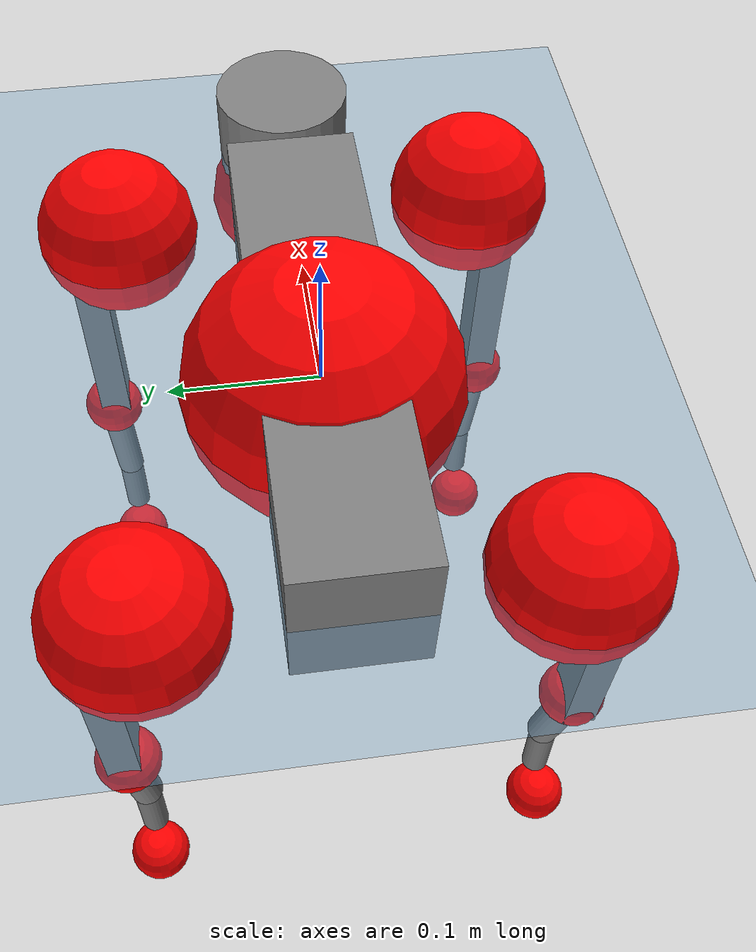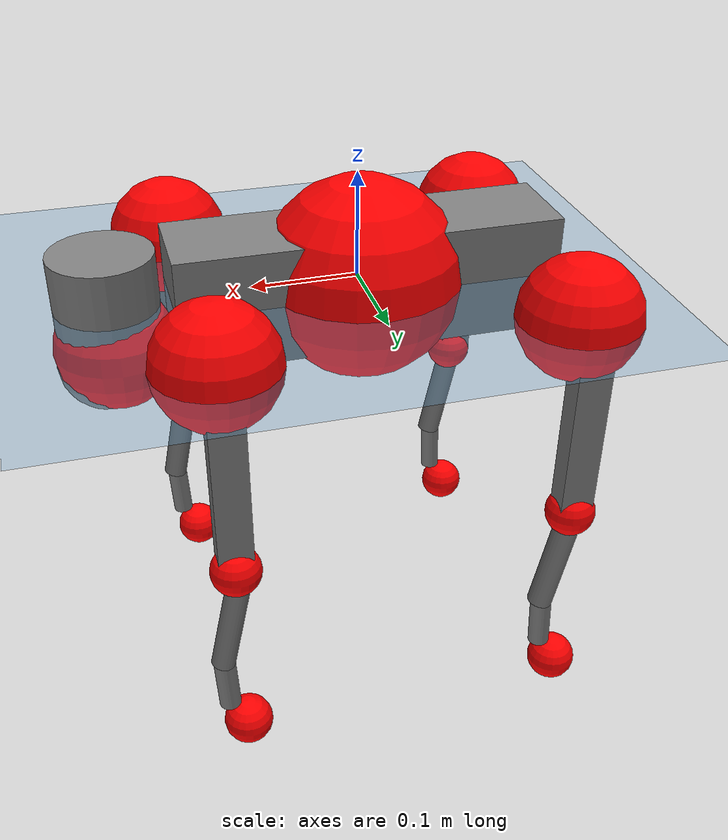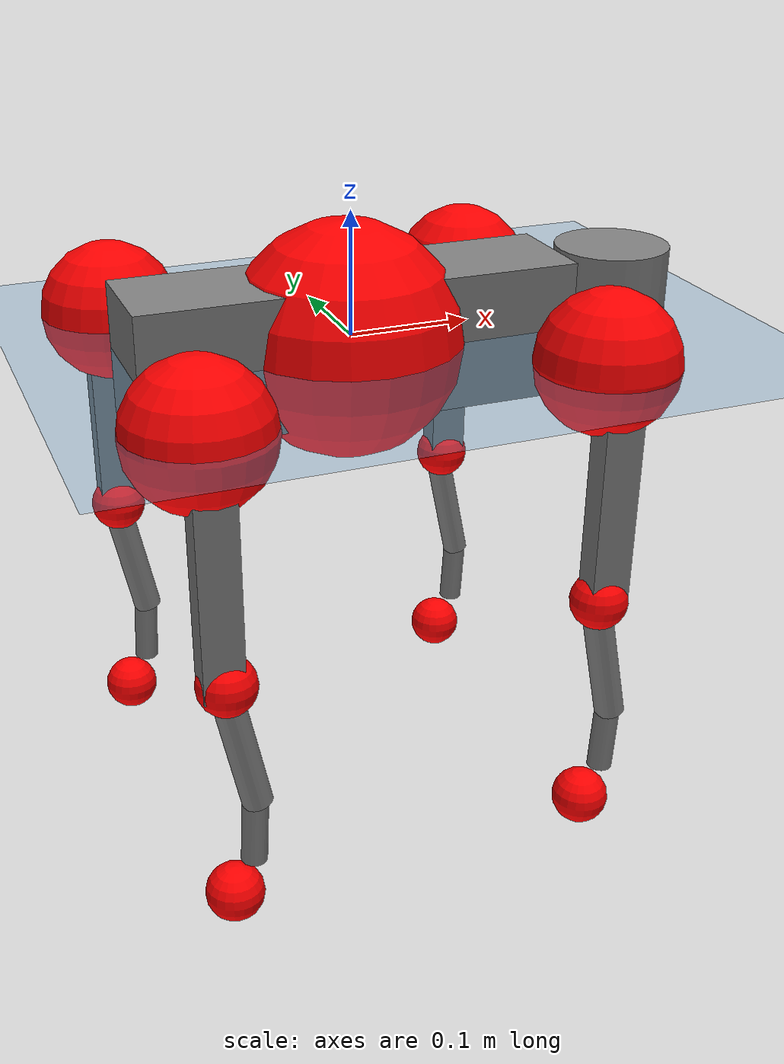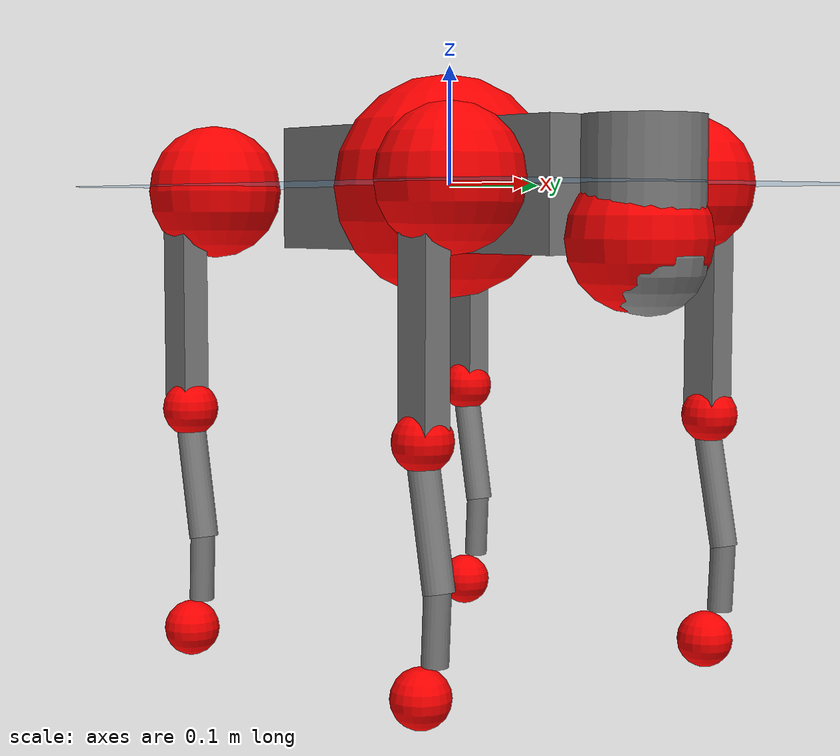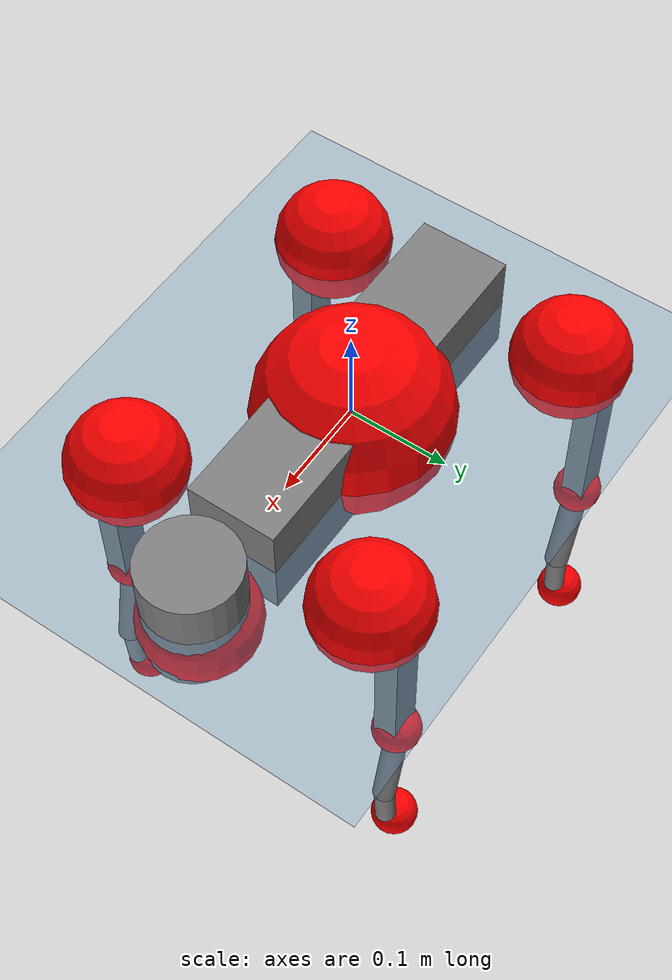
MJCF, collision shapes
<mujoco model="go2">
  <compiler angle="radian" assetdir="assets" balanceinertia="true" inertiafromgeom="false"/>

  <option timestep="0.005" density="1.2" viscosity="2e-05"/>

  <size nkey="1"/>

  <visual>
    <quality shadowsize="8192"/>
    <map shadowclip="0.5"/>
  </visual>

  <default>
    <default class="/">
      <geom contype="0" conaffinity="0" group="1" solref="-1000 -80"/>
      <site size="0.01 0.005 0.005" group="5"/>
      <general forcelimited="true" biastype="affine" gainprm="20" biasprm="0 -20 -0.5"/>
      <default class="go2">
        <joint armature="0.01" damping="0.01" frictionloss="0.2"/>
        <geom condim="1" margin="0.001"/>
        <default class="visual">
          <geom type="mesh" group="2"/>
        </default>
        <default class="collision">
          <geom group="3"/>
          <default class="foot">
            <geom size="0.022 0 0" condim="6" priority="1" friction="0.8 0.02 0.01" solimp="0.015 1 0.022"/>
          </default>
        </default>
        <default class="reward_collision_sphere">
          <geom group="5" rgba="1 0 0 1"/>
        </default>
      </default>
    </default>
  </default>

  <asset>
    <texture type="skybox" colorspace="auto" name="//unnamed_texture_0" builtin="gradient" rgb1="0.95 0.95 0.95" rgb2="0.95 0.95 0.95" width="100" height="600"/>
    <texture type="2d" colorspace="auto" name="texplane" builtin="checker" rgb1="0.345 0.575 0.748" rgb2="0.345 0.575 0.748" markrgb="1 1 1" width="512" height="512"/>
    <material name="MatPlane" class="/" texture="texplane" texuniform="true" texrepeat="2 2" specular="0.9"/>
    <material name="metal" class="/" rgba="0.9 0.95 0.95 1"/>
    <material name="black" class="/" rgba="0 0 0 1"/>
    <material name="white" class="/"/>
    <material name="gray" class="/" rgba="0.671705 0.692426 0.77427 1"/>
    <mesh name="base_0" class="/" file="base_0.obj"/>
    <mesh name="base_1" class="/" file="base_1.obj"/>
    <mesh name="base_2" class="/" file="base_2.obj"/>
    <mesh name="base_3" class="/" file="base_3.obj"/>
    <mesh name="base_4" class="/" file="base_4.obj"/>
    <mesh name="hip_0" class="/" file="hip_0.obj"/>
    <mesh name="hip_1" class="/" file="hip_1.obj"/>
    <mesh name="thigh_0" class="/" file="thigh_0.obj"/>
    <mesh name="thigh_1" class="/" file="thigh_1.obj"/>
    <mesh name="thigh_mirror_0" class="/" file="thigh_mirror_0.obj"/>
    <mesh name="thigh_mirror_1" class="/" file="thigh_mirror_1.obj"/>
    <mesh name="calf_0" class="/" file="calf_0.obj"/>
    <mesh name="calf_1" class="/" file="calf_1.obj"/>
    <mesh name="calf_mirror_0" class="/" file="calf_mirror_0.obj"/>
    <mesh name="calf_mirror_1" class="/" file="calf_mirror_1.obj"/>
    <mesh name="foot" class="/" file="foot.obj"/>
  </asset>

  <worldbody>
    <geom name="floor" class="/" size="100 100 0.125" type="plane" group="0" material="MatPlane"/>
    <light name="toplight_shadow" class="/" pos="0 0 5" dir="0.0990148 0.0990148 -0.990148" type="directional" ambient="0.04 0.04 0.04" diffuse="0.55 0.55 0.55" specular="0.12 0.12 0.12"/>
    <light name="toplight_fill" class="/" pos="0 0 5" dir="0.0990148 0.0990148 -0.990148" type="directional" castshadow="false" ambient="0.04 0.04 0.04" diffuse="0.3 0.3 0.3" specular="0.08 0.08 0.08"/>
    <body name="trunk" childclass="go2" pos="-0.00456639 -0.000924817 -0.00154171" quat="0.999999 -0.000485766 0.00125275 -0.000924637">
      <inertial pos="0.0211689 0.00187836 -0.00659919" quat="0.00203418 0.71033 -0.0126915 0.703752" mass="6.37808" diaginertia="0.0408048 0.170998 0.0155952"/>
      <joint name="//unnamed_joint_0" type="free" armature="0" damping="0" frictionloss="0"/>
      <geom name="//unnamed_geom_1" class="visual" material="black" mesh="base_0"/>
      <geom name="//unnamed_geom_2" class="visual" material="black" mesh="base_1"/>
      <geom name="//unnamed_geom_3" class="visual" material="black" mesh="base_2"/>
      <geom name="//unnamed_geom_4" class="visual" material="white" mesh="base_3"/>
      <geom name="//unnamed_geom_5" class="visual" material="gray" mesh="base_4"/>
      <geom name="trunk_1" class="collision" size="0.177877 0.0442093 0.0539022" type="box"/>
      <geom name="trunk_2" class="collision" size="0.0472827 0.0425544" pos="0.233683 0 0.00904214" type="cylinder"/>
      <geom name="trunk_3" class="collision" size="0.0444457" pos="0.240243 0 -0.0542528"/>
      <geom name="//unnamed_geom_9" class="reward_collision_sphere" size="0.0945653"/>
      <geom name="//unnamed_geom_10" class="reward_collision_sphere" size="0.0567392" pos="0.229584 0 -0.0406896"/>
      <site name="imu" pos="-0.0268651 0.00487343 0.0239148" size="0.00945653"/>
      <camera name="track" pos="0 -2.22561 0" quat="0.707107 0.707107 0 0" mode="trackcom"/>
      <camera name="ego_camera" pos="0.255822 0 0.0406896" quat="-0.5 -0.5 0.5 0.5"/>
      <body name="FL_hip" pos="0.157482 0.0493081 0.00171398" quat="1 0.000624129 0.000591082 -0.000226271">
        <inertial pos="-0.00146972 0.00296132 -0.00281443" quat="0.492089 0.504419 0.503661 0.499735" mass="0.580168" diaginertia="0.000318395 0.00106511 0.000290027"/>
        <joint name="FL_hip_joint" pos="0 0 0" axis="0.999724 -0.0174525 0.0157529" range="-1.13086 1.01388" armature="0.00983852" damping="0.0161799" frictionloss="0.1852"/>
        <geom name="//unnamed_geom_11" class="visual" material="metal" mesh="hip_0"/>
        <geom name="//unnamed_geom_12" class="visual" material="gray" mesh="hip_1"/>
        <geom name="//unnamed_geom_13" class="collision" size="0.0435 0.0189131" pos="0 0.0890243 0" quat="0.707107 0.707107 0 0" type="cylinder"/>
        <geom name="//unnamed_geom_14" class="reward_collision_sphere" size="0.0567392" pos="0 0.0778962 0"/>
        <body name="FL_thigh" pos="0.0010257 0.105724 0.000601071" quat="0.999999 -0.000106726 -0.000233904 -0.000982236">
          <inertial pos="-0.00375132 -0.0249243 -0.0264896" quat="0.829863 0.0856794 -0.0199821 0.550988" mass="0.974208" diaginertia="0.00226329 0.0101816 0.000502726"/>
          <joint name="FL_thigh_joint" pos="0 0 0" axis="0.0113329 0.999929 0.00360288" stiffness="0.0263738" range="-1.53658 3.48315" armature="0.0085506" damping="0" frictionloss="0.166956"/>
          <geom name="//unnamed_geom_15" class="visual" material="metal" mesh="thigh_0"/>
          <geom name="//unnamed_geom_16" class="visual" material="gray" mesh="thigh_1"/>
          <geom name="//unnamed_geom_17" class="collision" size="0.100712 0.0115843 0.0160761" pos="0 0 -0.0962988" quat="0.707107 0 0.707107 0" type="box"/>
          <body name="FL_calf" pos="-5.82853e-06 0.00300397 -0.19342" quat="1 0.000118827 -4.08678e-05 -6.14191e-05">
            <inertial pos="0.00686672 0.000282175 -0.127849" quat="0.709885 -0.00355864 -0.0136117 0.704177" mass="0.20284" diaginertia="0.000514601 0.0023492 3.11018e-05"/>
            <joint name="FL_calf_joint" pos="0 0 0" axis="0.0182571 0.999831 0.00206309" range="-2.66054 -0.815701" armature="0.00999141" damping="0.0161847" frictionloss="0.20005"/>
            <geom name="//unnamed_geom_18" class="visual" material="gray" mesh="calf_0"/>
            <geom name="//unnamed_geom_19" class="visual" material="black" mesh="calf_1"/>
            <geom name="FL_calf0" class="collision" size="0.0113478 0.0567392" pos="0.00655954 0 -0.0542528" quat="0.994493 0 -0.104807 0" type="cylinder"/>
            <geom name="//unnamed_geom_21" class="collision" size="0.0104022 0.0307337" pos="0.0163988 0 -0.133824" quat="0.999688 0 0.0249974 0" type="cylinder"/>
            <geom name="//unnamed_geom_22" class="visual" pos="0 0 -0.192598" quat="1 0 0 0" material="black" mesh="foot"/>
            <geom name="FL_foot" class="foot" size="0.0158247" pos="-0.00163988 0 -0.192598"/>
            <geom name="//unnamed_geom_24" class="reward_collision_sphere" size="0.0236413"/>
            <geom name="//unnamed_geom_25" class="reward_collision_sphere" size="0.0236413" pos="-0.00163988 0 -0.192598"/>
            <site name="FL_foot" class="foot" pos="-0.00163988 0 -0.192598" size="0.00945653"/>
          </body>
        </body>
      </body>
      <body name="FR_hip" pos="0.161708 -0.049759 0.00370836" quat="1 -0.000618879 0.000325804 4.98559e-05">
        <inertial pos="-0.00318923 0.000373395 0.000266673" quat="0.496567 0.513436 0.49555 0.494201" mass="0.579602" diaginertia="0.000327944 0.00100562 0.000286703"/>
        <joint name="FR_hip_joint" pos="0 0 0" axis="0.999983 -0.00540598 0.0021084" range="-1.00319 1.055" armature="0.0105475" damping="0.0166372" frictionloss="0.208569"/>
        <geom name="//unnamed_geom_26" class="visual" pos="0 1.81714e-09 7.79409e-08" quat="4.63268e-05 1 0 0" material="metal" mesh="hip_0"/>
        <geom name="//unnamed_geom_27" class="visual" pos="0 2.9458e-09 -1.92778e-07" quat="4.63268e-05 1 0 0" material="gray" mesh="hip_1"/>
        <geom name="//unnamed_geom_28" class="collision" size="0.0435 0.0189131" pos="0 -0.0890243 0" quat="0.707107 0.707107 0 0" type="cylinder"/>
        <geom name="//unnamed_geom_29" class="reward_collision_sphere" size="0.0567392" pos="0 -0.0778962 0"/>
        <body name="FR_thigh" pos="-0.000388109 -0.101948 0.00133603" quat="1 0.000211802 -9.20301e-05 -0.000387849">
          <inertial pos="-0.00205845 0.0258856 -0.0308104" quat="0.551438 -0.0199433 0.0848163 0.829654" mass="0.960378" diaginertia="0.00212883 0.00949107 0.000509481"/>
          <joint name="FR_thigh_joint" pos="0 0 0" axis="0.00455276 -0.999863 0.0159407" range="-3.53287 1.53853" armature="0.00928153" damping="0.000923524" frictionloss="0.205973"/>
          <geom name="//unnamed_geom_30" class="visual" material="metal" mesh="thigh_mirror_0"/>
          <geom name="//unnamed_geom_31" class="visual" material="gray" mesh="thigh_mirror_1"/>
          <geom name="//unnamed_geom_32" class="collision" size="0.100712 0.0115843 0.0160761" pos="0 0 -0.0962988" quat="0.707107 0 0.707107 0" type="box"/>
          <body name="FR_calf" pos="-0.00261292 0.00132442 -0.194756" quat="1 -9.43224e-05 -3.12849e-05 8.63423e-05">
            <inertial pos="0.00588707 0.00163644 -0.128434" quat="0.712586 -0.00863394 0.0014951 0.70153" mass="0.204447" diaginertia="0.000553415 0.00250906 3.25437e-05"/>
            <joint name="FR_calf_joint" pos="0 0 0" axis="-0.00962148 -0.999861 -0.0136462" stiffness="0.0165815" range="0.854327 2.71194" armature="0.00828227" damping="0.000813285" frictionloss="0.169972"/>
            <geom name="//unnamed_geom_33" class="visual" material="gray" mesh="calf_mirror_0"/>
            <geom name="//unnamed_geom_34" class="visual" material="black" mesh="calf_mirror_1"/>
            <geom name="FR_calf0" class="collision" size="0.0122935 0.0567392" pos="0.00819942 0 -0.0542528" quat="0.995004 0 -0.0998334 0" type="cylinder"/>
            <geom name="//unnamed_geom_36" class="collision" size="0.0104022 0.0307337" pos="0.0163988 0 -0.133824" quat="0.999688 0 0.0249974 0" type="cylinder"/>
            <geom name="//unnamed_geom_37" class="visual" pos="0 0 -0.192598" quat="1 0 0 0" material="black" mesh="foot"/>
            <geom name="FR_foot" class="foot" size="0.0206648" pos="-0.00163988 0 -0.192598"/>
            <geom name="//unnamed_geom_39" class="reward_collision_sphere" size="0.0236413"/>
            <geom name="//unnamed_geom_40" class="reward_collision_sphere" size="0.0236413" pos="-0.00163988 0 -0.192598"/>
            <site name="FR_foot" class="foot" pos="-0.00163988 0 -0.192598" size="0.00945653"/>
          </body>
        </body>
      </body>
      <body name="RL_hip" pos="-0.159416 0.0514026 0.00131991" quat="1 -0.000117391 5.71479e-05 -2.21078e-05">
        <inertial pos="0.00637523 -0.0015178 0.000837077" quat="0.51609 0.496031 0.477577 0.509436" mass="0.565623" diaginertia="0.000343515 0.00105314 0.000288216"/>
        <joint name="RL_hip_joint" pos="0 0 0" axis="-0.999702 0.0218273 -0.0109516" range="-1.08473 1.0338" armature="0.0101982" damping="0" frictionloss="0.163923"/>
        <geom name="//unnamed_geom_41" class="visual" pos="7.34144e-10 0 1.43909e-07" quat="4.63268e-05 0 1 0" material="metal" mesh="hip_0"/>
        <geom name="//unnamed_geom_42" class="visual" pos="1.19014e-09 0 1.27627e-07" quat="4.63268e-05 0 1 0" material="gray" mesh="hip_1"/>
        <geom name="//unnamed_geom_43" class="collision" size="0.0435 0.0189131" pos="0 0.0890243 0" quat="0.707107 0.707107 0 0" type="cylinder"/>
        <geom name="//unnamed_geom_44" class="reward_collision_sphere" size="0.0567392" pos="0 0.0778962 0"/>
        <body name="RL_thigh" pos="-0.00108633 0.108698 -0.00282981" quat="1 -5.30398e-05 -0.000475613 -0.000785979">
          <inertial pos="-0.00266435 -0.023913 -0.0271267" quat="0.832534 0.0897389 -0.0281115 0.545934" mass="0.957735" diaginertia="0.00228333 0.0105835 0.000548365"/>
          <joint name="RL_thigh_joint" pos="0 0 0" axis="-0.000396884 1 0.000364569" range="-0.51042 4.54132" armature="0.00900249" damping="0" frictionloss="0.191856"/>
          <geom name="//unnamed_geom_45" class="visual" material="metal" mesh="thigh_0"/>
          <geom name="//unnamed_geom_46" class="visual" material="gray" mesh="thigh_1"/>
          <geom name="//unnamed_geom_47" class="collision" size="0.100712 0.0115843 0.0160761" pos="0 0 -0.0962988" quat="0.707107 0 0.707107 0" type="box"/>
          <body name="RL_calf" pos="-0.000225093 -0.00142458 -0.189167" quat="0.999999 -0.00105995 0.00064275 0.000525183">
            <inertial pos="0.00283881 -0.00482449 -0.127255" quat="0.712516 0.00157572 -0.00942262 0.701591" mass="0.210626" diaginertia="0.000561839 0.00259156 3.48623e-05"/>
            <joint name="RL_calf_joint" pos="0 0 0" axis="-0.00661605 0.999667 0.0249371" stiffness="0.0250509" range="-2.72811 -0.804091" armature="0.00981218" damping="0.00795875" frictionloss="0.152168"/>
            <geom name="//unnamed_geom_48" class="visual" material="gray" mesh="calf_0"/>
            <geom name="//unnamed_geom_49" class="visual" material="black" mesh="calf_1"/>
            <geom name="RL_calf0" class="collision" size="0.0122935 0.0567392" pos="0.00819942 0 -0.0542528" quat="0.995004 0 -0.0998334 0" type="cylinder"/>
            <geom name="//unnamed_geom_51" class="collision" size="0.0104022 0.0307337" pos="0.0163988 0 -0.133824" quat="0.999688 0 0.0249974 0" type="cylinder"/>
            <geom name="//unnamed_geom_52" class="visual" pos="0 0 -0.192598" quat="1 0 0 0" material="black" mesh="foot"/>
            <geom name="RL_foot" class="foot" size="0.0193445" pos="-0.00163988 0 -0.192598"/>
            <geom name="//unnamed_geom_54" class="reward_collision_sphere" size="0.0236413"/>
            <geom name="//unnamed_geom_55" class="reward_collision_sphere" size="0.0236413" pos="-0.00163988 0 -0.192598"/>
            <site name="RL_foot" class="foot" pos="-0.00163988 0 -0.192598" size="0.00945653"/>
          </body>
        </body>
      </body>
      <body name="RR_hip" pos="-0.155914 -0.0530963 -0.00451867" quat="0.999998 -0.00100821 -0.00162859 -0.000125629">
        <inertial pos="0.000469472 -0.0029428 0.00365297" quat="0.500343 0.496618 0.496863 0.506116" mass="0.573087" diaginertia="0.000328088 0.00101153 0.000283822"/>
        <joint name="RR_hip_joint" pos="0 0 0" axis="-0.999769 -0.0112705 -0.0183148" range="-0.999337 1.0892" armature="0.00867001" damping="0" frictionloss="0.211575"/>
        <geom name="//unnamed_geom_56" class="visual" pos="-7.24005e-10 1.81714e-09 6.59682e-08" quat="2.14617e-09 4.63268e-05 4.63268e-05 -1" material="metal" mesh="hip_0"/>
        <geom name="//unnamed_geom_57" class="visual" pos="-1.21521e-09 2.9458e-09 3.20405e-07" quat="2.14617e-09 4.63268e-05 4.63268e-05 -1" material="gray" mesh="hip_1"/>
        <geom name="//unnamed_geom_58" class="collision" size="0.0435 0.0189131" pos="0 -0.0890243 0" quat="0.707107 0.707107 0 0" type="cylinder"/>
        <geom name="//unnamed_geom_59" class="reward_collision_sphere" size="0.0567392" pos="0 -0.0778962 0"/>
        <body name="RR_thigh" pos="-0.00161454 -0.107376 0.00450741" quat="1 0.000727629 -0.00033713 -0.000302255">
          <inertial pos="-0.00512856 0.0240919 -0.0294788" quat="0.552359 -0.0162882 0.0837801 0.829225" mass="1.00246" diaginertia="0.00214639 0.00999478 0.000527985"/>
          <joint name="RR_thigh_joint" pos="0 0 0" axis="-0.0112906 -0.99989 -0.00962867" stiffness="0.00382291" range="-4.53787 0.479455" armature="0.00871716" damping="0.0231521" frictionloss="0.212022"/>
          <geom name="//unnamed_geom_60" class="visual" material="metal" mesh="thigh_mirror_0"/>
          <geom name="//unnamed_geom_61" class="visual" material="gray" mesh="thigh_mirror_1"/>
          <geom name="//unnamed_geom_62" class="collision" size="0.100712 0.0115843 0.0160761" pos="0 0 -0.0962988" quat="0.707107 0 0.707107 0" type="box"/>
          <body name="RR_calf" pos="0.00438148 0.000782292 -0.19135" quat="1 0.000194795 4.45185e-05 -3.13578e-05">
            <inertial pos="0.00575419 0.0027087 -0.127504" quat="0.701759 -0.008848 0.00177087 0.712357" mass="0.202644" diaginertia="0.000570009 0.00249943 3.15979e-05"/>
            <joint name="RR_calf_joint" pos="0 0 0" axis="-0.00816373 -0.999908 0.0107964" range="0.795566 2.74372" armature="0.00827577" damping="0" frictionloss="0.164301"/>
            <geom name="//unnamed_geom_63" class="visual" material="gray" mesh="calf_mirror_0"/>
            <geom name="//unnamed_geom_64" class="visual" material="black" mesh="calf_mirror_1"/>
            <geom name="RR_calf0" class="collision" size="0.0122935 0.0567392" pos="0.00819942 0 -0.0542528" quat="0.995004 0 -0.0998334 0" type="cylinder"/>
            <geom name="//unnamed_geom_66" class="collision" size="0.0104022 0.0307337" pos="0.0163988 0 -0.133824" quat="0.999688 0 0.0249974 0" type="cylinder"/>
            <geom name="//unnamed_geom_67" class="visual" pos="0 0 -0.192598" quat="1 0 0 0" material="black" mesh="foot"/>
            <geom name="RR_foot" class="foot" size="0.0219868" pos="-0.00163988 0 -0.192598"/>
            <geom name="//unnamed_geom_69" class="reward_collision_sphere" size="0.0236413"/>
            <geom name="//unnamed_geom_70" class="reward_collision_sphere" size="0.0236413" pos="-0.00163988 0 -0.192598"/>
            <site name="RR_foot" class="foot" pos="-0.00163988 0 -0.192598" size="0.00945653"/>
          </body>
        </body>
      </body>
    </body>
  </worldbody>

  <contact>
    <pair class="/" geom1="floor" geom2="FL_foot" name="//unnamed_contact_0"/>
    <pair class="/" geom1="floor" geom2="FR_foot" name="//unnamed_contact_1"/>
    <pair class="/" geom1="floor" geom2="RL_foot" name="//unnamed_contact_2"/>
    <pair class="/" geom1="floor" geom2="RR_foot" name="//unnamed_contact_3"/>
  </contact>

  <actuator>
    <general name="FL_hip" class="/" joint="FL_hip_joint" forcerange="-22.0803 22.0803" gainprm="19.2799" biasprm="0 -19.2799 -0.479711"/>
    <general name="FL_thigh" class="/" joint="FL_thigh_joint" forcerange="-21.5363 21.5363" gainprm="19.2799" biasprm="0 -19.2799 -0.479711"/>
    <general name="FL_calf" class="/" joint="FL_calf_joint" forcerange="-39.4745 39.4745" gainprm="19.2799" biasprm="0 -19.2799 -0.479711"/>
    <general name="FR_hip" class="/" joint="FR_hip_joint" forcerange="-22.3255 22.3255" gainprm="19.2799" biasprm="0 -19.2799 -0.479711"/>
    <general name="FR_thigh" class="/" joint="FR_thigh_joint" forcerange="-23.3081 23.3081" gainprm="19.2799" biasprm="0 -19.2799 -0.479711"/>
    <general name="FR_calf" class="/" joint="FR_calf_joint" forcerange="-43.7168 43.7168" gainprm="19.2799" biasprm="0 -19.2799 -0.479711"/>
    <general name="RL_hip" class="/" joint="RL_hip_joint" forcerange="-19.2819 19.2819" gainprm="19.2799" biasprm="0 -19.2799 -0.479711"/>
    <general name="RL_thigh" class="/" joint="RL_thigh_joint" forcerange="-21.3161 21.3161" gainprm="19.2799" biasprm="0 -19.2799 -0.479711"/>
    <general name="RL_calf" class="/" joint="RL_calf_joint" forcerange="-48.6884 48.6884" gainprm="19.2799" biasprm="0 -19.2799 -0.479711"/>
    <general name="RR_hip" class="/" joint="RR_hip_joint" forcerange="-22.5566 22.5566" gainprm="19.2799" biasprm="0 -19.2799 -0.479711"/>
    <general name="RR_thigh" class="/" joint="RR_thigh_joint" forcerange="-19.6729 19.6729" gainprm="19.2799" biasprm="0 -19.2799 -0.479711"/>
    <general name="RR_calf" class="/" joint="RR_calf_joint" forcerange="-47.734 47.734" gainprm="19.2799" biasprm="0 -19.2799 -0.479711"/>
  </actuator>

  <sensor>
    <gyro site="imu" name="imu_angular_velocity"/>
    <velocimeter site="imu" name="imu_linear_velocity"/>
    <framelinvel objtype="site" objname="FL_foot" name="FL_foot_global_linear_velocity"/>
    <framelinvel objtype="site" objname="FR_foot" name="FR_foot_global_linear_velocity"/>
    <framelinvel objtype="site" objname="RL_foot" name="RL_foot_global_linear_velocity"/>
    <framelinvel objtype="site" objname="RR_foot" name="RR_foot_global_linear_velocity"/>
  </sensor>

  <keyframe>
    <key name="home" qpos="0 0 0.325 1 0 0 0 0.1 0.8 -1.5 -0.1 -0.8 1.5 -0.1 0.8 -1.5 0.1 -0.8 1.5"/>
  </keyframe>
</mujoco>
